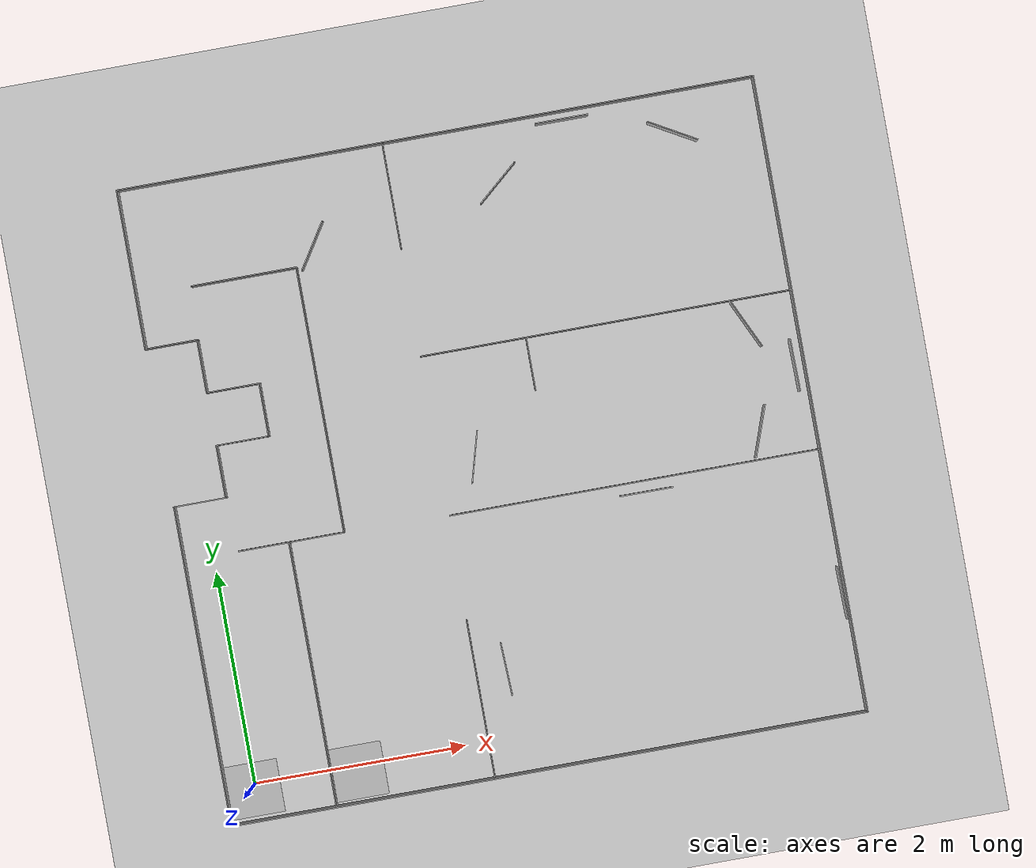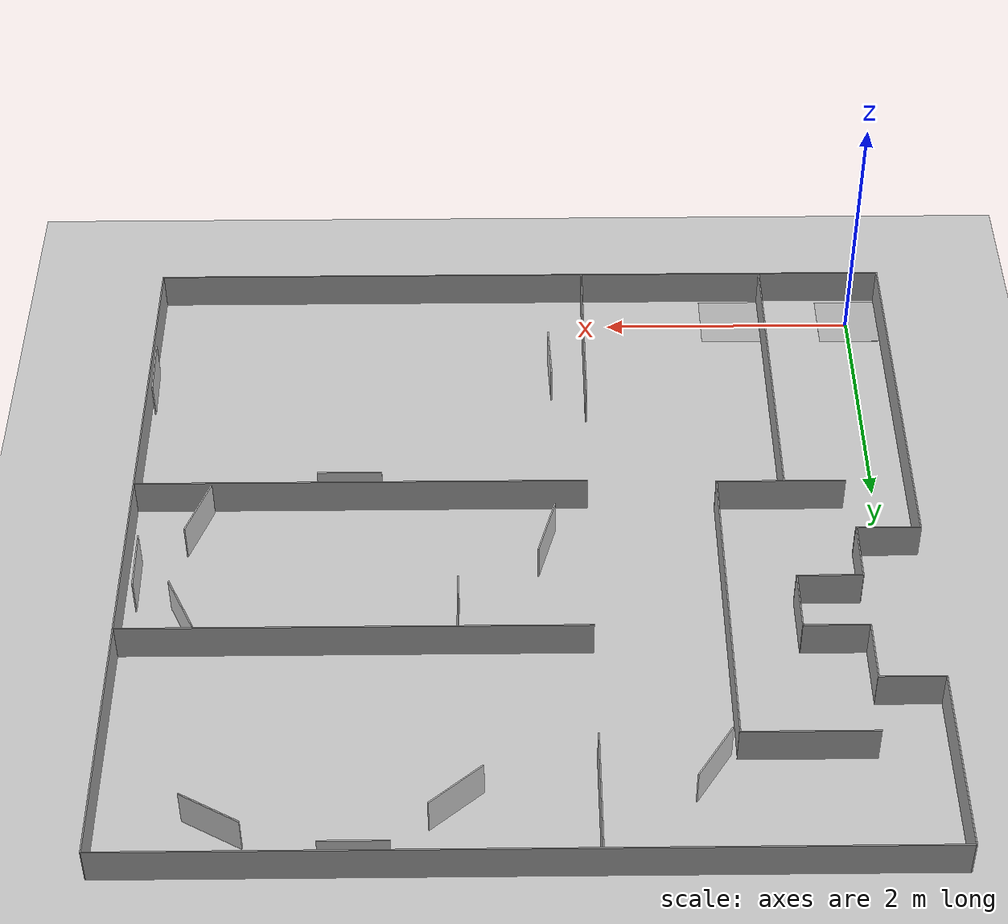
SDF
<sdf version="1.6">
 <world name="default">
  <light name="sun" type="directional">
   <pose>0 0 10 0 -0 0</pose>
   <diffuse>0.8 0.8 0.8 1</diffuse>
   <specular>0.2 0.2 0.2 1</specular>
   <attenuation>
    <range>1000</range>
    <constant>0.9</constant>
    <linear>0.01</linear>
    <quadratic>0.001</quadratic>
   </attenuation>
   <direction>-0.5 0.1 -0.9</direction>
  </light>
  <model name="ground_plane">
   <static>1</static>
   <link name="link">
    <collision name="collision">
     <geometry><plane><normal>0 0 1</normal><size>100 100</size></plane></geometry>
     <surface>
      <contact><collide_bitmask>65535</collide_bitmask></contact>
      <friction><ode><mu>100</mu><mu2>50</mu2></ode></friction>
     </surface>
    </collision>
    <visual name="visual">
     <cast_shadows>0</cast_shadows>
     <geometry><plane><normal>0 0 1</normal><size>100 100</size></plane></geometry>
     <material>
      <script><uri>file://media/materials/scripts/gazebo.material</uri><name>Gazebo/Grey</name></script>
     </material>
    </visual>
   </link>
  </model>
  <gravity>0 0 -9.8</gravity>
  <magnetic_field>6e-06 2.3e-05 -4.2e-05</magnetic_field>
  <atmosphere type="adiabatic"/>
  <physics name="default_physics" default="0" type="ode">
   <max_step_size>0.001</max_step_size>
   <real_time_factor>1</real_time_factor>
   <real_time_update_rate>1000</real_time_update_rate>
  </physics>
  <scene><ambient>0.4 0.4 0.4 1</ambient><background>0.7 0.7 0.7 1</background><shadows>1</shadows></scene>
  <audio><device>default</device></audio>
  <spherical_coordinates>
   <surface_model>EARTH_WGS84</surface_model>
   <latitude_deg>0</latitude_deg>
   <longitude_deg>0</longitude_deg>
   <elevation>0</elevation>
   <heading_deg>0</heading_deg>
  </spherical_coordinates>
  <model name="arena">
   <pose>2.72717 2.66142 0 0 -0 0</pose>
   <link name="Wall_1">
    <collision name="Wall_1_Collision">
     <geometry><box><size>6 0.01 0.3</size></box></geometry>
     <pose>0 0 0.15 0 -0 0</pose>
    </collision>
    <visual name="Wall_1_Visual">
     <pose>0 0 0.15 0 -0 0</pose>
     <geometry><box><size>6 0.01 0.3</size></box></geometry>
     <material>
      <script><uri>file://media/materials/scripts/gazebo.material</uri><name>Gazebo/Grey</name></script>
      <ambient>1 1 1 1</ambient>
     </material>
     <meta><layer>0</layer></meta>
    </visual>
    <pose>0.001988 -2.99751 0 0 -0 0</pose>
   </link>
   <link name="Wall_11">
    <collision name="Wall_11_Collision">
     <geometry><box><size>1.5 0.01 0.3</size></box></geometry>
     <pose>0 0 0.15 0 -0 0</pose>
    </collision>
    <visual name="Wall_11_Visual">
     <pose>0 0 0.15 0 -0 0</pose>
     <geometry><box><size>1.5 0.01 0.3</size></box></geometry>
     <material>
      <script><uri>file://media/materials/scripts/gazebo.material</uri><name>Gazebo/Grey</name></script>
      <ambient>1 1 1 1</ambient>
     </material>
     <meta><layer>0</layer></meta>
    </visual>
    <pose>-2.99841 2.25251 0 0 -0 1.5708</pose>
   </link>
   <link name="Wall_20">
    <collision name="Wall_20_Collision">
     <geometry><box><size>0.5 0.01 0.3</size></box></geometry>
     <pose>0 0 0.15 0 -0 0</pose>
    </collision>
    <visual name="Wall_20_Visual">
     <pose>0 0 0.15 0 -0 0</pose>
     <geometry><box><size>0.5 0.01 0.3</size></box></geometry>
     <material>
      <script><uri>file://media/materials/scripts/gazebo.material</uri><name>Gazebo/Grey</name></script>
      <ambient>1 1 1 1</ambient>
     </material>
     <meta><layer>0</layer></meta>
    </visual>
    <pose>-2.75425 1.50057 0 0 -0 0</pose>
   </link>
   <link name="Wall_22">
    <collision name="Wall_22_Collision">
     <geometry><box><size>0.5 0.01 0.3</size></box></geometry>
     <pose>0 0 0.15 0 -0 0</pose>
    </collision>
    <visual name="Wall_22_Visual">
     <pose>0 0 0.15 0 -0 0</pose>
     <geometry><box><size>0.5 0.01 0.3</size></box></geometry>
     <material>
      <script><uri>file://media/materials/scripts/gazebo.material</uri><name>Gazebo/Grey</name></script>
      <ambient>1 1 1 1</ambient>
     </material>
     <meta><layer>0</layer></meta>
    </visual>
    <pose>-2.50969 1.25495 0 0 -0 1.5708</pose>
   </link>
   <link name="Wall_24">
    <collision name="Wall_24_Collision">
     <geometry><box><size>0.5 0.01 0.3</size></box></geometry>
     <pose>0 0 0.15 0 -0 0</pose>
    </collision>
    <visual name="Wall_24_Visual">
     <pose>0 0 0.15 0 -0 0</pose>
     <geometry><box><size>0.5 0.01 0.3</size></box></geometry>
     <material>
      <script><uri>file://media/materials/scripts/gazebo.material</uri><name>Gazebo/Grey</name></script>
      <ambient>1 1 1 1</ambient>
     </material>
     <meta><layer>0</layer></meta>
    </visual>
    <pose>-2.26459 1.00122 0 0 -0 0</pose>
   </link>
   <link name="Wall_28">
    <collision name="Wall_28_Collision">
     <geometry><box><size>0.5 0.01 0.3</size></box></geometry>
     <pose>0 0 0.15 0 -0 0</pose>
    </collision>
    <visual name="Wall_28_Visual">
     <pose>0 0 0.15 0 -0 0</pose>
     <geometry><box><size>0.5 0.01 0.3</size></box></geometry>
     <material>
      <script><uri>file://media/materials/scripts/gazebo.material</uri><name>Gazebo/Grey</name></script>
      <ambient>1 1 1 1</ambient>
     </material>
     <meta><layer>0</layer></meta>
    </visual>
    <pose>-2.01503 0.755808 0 0 -0 -1.5708</pose>
   </link>
   <link name="Wall_30">
    <collision name="Wall_30_Collision">
     <geometry><box><size>0.5 0.01 0.3</size></box></geometry>
     <pose>0 0 0.15 0 -0 0</pose>
    </collision>
    <visual name="Wall_30_Visual">
     <pose>0 0 0.15 0 -0 0</pose>
     <geometry><box><size>0.5 0.01 0.3</size></box></geometry>
     <material>
      <script><uri>file://media/materials/scripts/gazebo.material</uri><name>Gazebo/Grey</name></script>
      <ambient>1 1 1 1</ambient>
     </material>
     <meta><layer>0</layer></meta>
    </visual>
    <pose>-2.25991 0.503524 0 0 -0 0</pose>
   </link>
   <link name="Wall_34">
    <collision name="Wall_34_Collision">
     <geometry><box><size>0.5 0.01 0.3</size></box></geometry>
     <pose>0 0 0.15 0 -0 0</pose>
    </collision>
    <visual name="Wall_34_Visual">
     <pose>0 0 0.15 0 -0 0</pose>
     <geometry><box><size>0.5 0.01 0.3</size></box></geometry>
     <material>
      <script><uri>file://media/materials/scripts/gazebo.material</uri><name>Gazebo/Grey</name></script>
      <ambient>1 1 1 1</ambient>
     </material>
     <meta><layer>0</layer></meta>
    </visual>
    <pose>-2.50907 0.257403 0 0 -0 -1.5708</pose>
   </link>
   <link name="Wall_36">
    <collision name="Wall_36_Collision">
     <geometry><box><size>0.5 0.01 0.3</size></box></geometry>
     <pose>0 0 0.15 0 -0 0</pose>
    </collision>
    <visual name="Wall_36_Visual">
     <pose>0 0 0.15 0 -0 0</pose>
     <geometry><box><size>0.5 0.01 0.3</size></box></geometry>
     <material>
      <script><uri>file://media/materials/scripts/gazebo.material</uri><name>Gazebo/Grey</name></script>
      <ambient>1 1 1 1</ambient>
     </material>
     <meta><layer>0</layer></meta>
    </visual>
    <pose>-2.75227 0.011599 0 0 -0 0</pose>
   </link>
   <link name="Wall_38">
    <collision name="Wall_38_Collision">
     <geometry><box><size>3.012 0.01 0.3</size></box></geometry>
     <pose>0 0 0.15 0 -0 0</pose>
    </collision>
    <visual name="Wall_38_Visual">
     <pose>0 0 0.15 0 -0 0</pose>
     <geometry><box><size>3.012 0.01 0.3</size></box></geometry>
     <material>
      <script><uri>file://media/materials/scripts/gazebo.material</uri><name>Gazebo/Grey</name></script>
      <ambient>1 1 1 1</ambient>
     </material>
     <meta><layer>0</layer></meta>
    </visual>
    <pose>-2.99601 -1.49551 0 0 -0 -1.5708</pose>
   </link>
   <link name="Wall_41">
    <collision name="Wall_41_Collision">
     <geometry><box><size>1 0.01 0.3</size></box></geometry>
     <pose>0 0 0.15 0 -0 0</pose>
    </collision>
    <visual name="Wall_41_Visual">
     <pose>0 0 0.15 0 -0 0</pose>
     <geometry><box><size>1 0.01 0.3</size></box></geometry>
     <material>
      <script><uri>file://media/materials/scripts/gazebo.material</uri><name>Gazebo/Grey</name></script>
      <ambient>1 1 1 1</ambient>
     </material>
     <meta><layer>0</layer></meta>
    </visual>
    <pose>-0.498279 2.49812 0 0 -0 1.5708</pose>
   </link>
   <link name="Wall_44">
    <collision name="Wall_44_Collision">
     <geometry><box><size>3.5 0.01 0.3</size></box></geometry>
     <pose>0 0 0.15 0 -0 0</pose>
    </collision>
    <visual name="Wall_44_Visual">
     <pose>0 0 0.15 0 -0 0</pose>
     <geometry><box><size>3.5 0.01 0.3</size></box></geometry>
     <material>
      <script><uri>file://media/materials/scripts/gazebo.material</uri><name>Gazebo/Grey</name></script>
      <ambient>1 1 1 1</ambient>
     </material>
     <meta><layer>0</layer></meta>
    </visual>
    <pose>1.25071 0.982331 0 0 -0 0</pose>
   </link>
   <link name="Wall_46">
    <collision name="Wall_46_Collision">
     <geometry><box><size>0.5 0.01 0.3</size></box></geometry>
     <pose>0 0 0.15 0 -0 0</pose>
    </collision>
    <visual name="Wall_46_Visual">
     <pose>0 0 0.15 0 -0 0</pose>
     <geometry><box><size>0.5 0.01 0.3</size></box></geometry>
     <material>
      <script><uri>file://media/materials/scripts/gazebo.material</uri><name>Gazebo/Grey</name></script>
      <ambient>1 1 1 1</ambient>
     </material>
     <meta><layer>0</layer></meta>
    </visual>
    <pose>0.496275 0.729352 0 0 -0 1.5708</pose>
   </link>
   <link name="Wall_48">
    <collision name="Wall_48_Collision">
     <geometry><box><size>3.5 0.01 0.3</size></box></geometry>
     <pose>0 0 0.15 0 -0 0</pose>
    </collision>
    <visual name="Wall_48_Visual">
     <pose>0 0 0.15 0 -0 0</pose>
     <geometry><box><size>3.5 0.01 0.3</size></box></geometry>
     <material>
      <script><uri>file://media/materials/scripts/gazebo.material</uri><name>Gazebo/Grey</name></script>
      <ambient>1 1 1 1</ambient>
     </material>
     <meta><layer>0</layer></meta>
    </visual>
    <pose>1.25425 -0.520404 0 0 -0 0</pose>
   </link>
   <link name="Wall_50">
    <collision name="Wall_50_Collision">
     <geometry><box><size>1.5 0.01 0.3</size></box></geometry>
     <pose>0 0 0.15 0 -0 0</pose>
    </collision>
    <visual name="Wall_50_Visual">
     <pose>0 0 0.15 0 -0 0</pose>
     <geometry><box><size>1.5 0.01 0.3</size></box></geometry>
     <material>
      <script><uri>file://media/materials/scripts/gazebo.material</uri><name>Gazebo/Grey</name></script>
      <ambient>1 1 1 1</ambient>
     </material>
     <meta><layer>0</layer></meta>
    </visual>
    <pose>-0.512233 -2.25115 0 0 -0 -1.5708</pose>
   </link>
   <link name="Wall_52">
    <collision name="Wall_52_Collision">
     <geometry><box><size>2.5 0.01 0.3</size></box></geometry>
     <pose>0 0 0.15 0 -0 0</pose>
    </collision>
    <visual name="Wall_52_Visual">
     <pose>0 0 0.15 0 -0 0</pose>
     <geometry><box><size>2.5 0.01 0.3</size></box></geometry>
     <material>
      <script><uri>file://media/materials/scripts/gazebo.material</uri><name>Gazebo/Grey</name></script>
      <ambient>1 1 1 1</ambient>
     </material>
     <meta><layer>0</layer></meta>
    </visual>
    <pose>-2.00505 -1.74423 0 0 -0 -1.5708</pose>
   </link>
   <link name="Wall_54">
    <collision name="Wall_54_Collision">
     <geometry><box><size>1 0.01 0.3</size></box></geometry>
     <pose>0 0 0.15 0 -0 0</pose>
    </collision>
    <visual name="Wall_54_Visual">
     <pose>0 0 0.15 0 -0 0</pose>
     <geometry><box><size>1 0.01 0.3</size></box></geometry>
     <material>
      <script><uri>file://media/materials/scripts/gazebo.material</uri><name>Gazebo/Grey</name></script>
      <ambient>1 1 1 1</ambient>
     </material>
     <meta><layer>0</layer></meta>
    </visual>
    <pose>-1.98078 -0.499121 0 0 -0 0</pose>
   </link>
   <link name="Wall_56">
    <collision name="Wall_56_Collision">
     <geometry><box><size>2.5 0.01 0.3</size></box></geometry>
     <pose>0 0 0.15 0 -0 0</pose>
    </collision>
    <visual name="Wall_56_Visual">
     <pose>0 0 0.15 0 -0 0</pose>
     <geometry><box><size>2.5 0.01 0.3</size></box></geometry>
     <material>
      <script><uri>file://media/materials/scripts/gazebo.material</uri><name>Gazebo/Grey</name></script>
      <ambient>1 1 1 1</ambient>
     </material>
     <meta><layer>0</layer></meta>
    </visual>
    <pose>-1.48616 0.751059 0 0 -0 -1.5708</pose>
   </link>
   <link name="Wall_58">
    <collision name="Wall_58_Collision">
     <geometry><box><size>1 0.01 0.3</size></box></geometry>
     <pose>0 0 0.15 0 -0 0</pose>
    </collision>
    <visual name="Wall_58_Visual">
     <pose>0 0 0.15 0 -0 0</pose>
     <geometry><box><size>1 0.01 0.3</size></box></geometry>
     <material>
      <script><uri>file://media/materials/scripts/gazebo.material</uri><name>Gazebo/Grey</name></script>
      <ambient>1 1 1 1</ambient>
     </material>
     <meta><layer>0</layer></meta>
    </visual>
    <pose>-1.9786 2.00012 0 0 -0 0</pose>
   </link>
   <link name="Wall_6">
    <collision name="Wall_6_Collision">
     <geometry><box><size>6 0.01 0.3</size></box></geometry>
     <pose>0 0 0.15 0 -0 0</pose>
    </collision>
    <visual name="Wall_6_Visual">
     <pose>0 0 0.15 0 -0 0</pose>
     <geometry><box><size>6 0.01 0.3</size></box></geometry>
     <material>
      <script><uri>file://media/materials/scripts/gazebo.material</uri><name>Gazebo/Grey</name></script>
      <ambient>1 1 1 1</ambient>
     </material>
     <meta><layer>0</layer></meta>
    </visual>
    <pose>2.99837 -0.000334 0 0 -0 -1.5708</pose>
   </link>
   <link name="Wall_8">
    <collision name="Wall_8_Collision">
     <geometry><box><size>6 0.01 0.3</size></box></geometry>
     <pose>0 0 0.15 0 -0 0</pose>
    </collision>
    <visual name="Wall_8_Visual">
     <pose>0 0 0.15 0 -0 0</pose>
     <geometry><box><size>6 0.01 0.3</size></box></geometry>
     <material>
      <script><uri>file://media/materials/scripts/gazebo.material</uri><name>Gazebo/Grey</name></script>
      <ambient>1 1 1 1</ambient>
     </material>
     <meta><layer>0</layer></meta>
    </visual>
    <pose>-0.003034 2.99691 0 0 -0 0</pose>
   </link>
   <static>1</static>
  </model>
  <model name="start_plane">
   <static>1</static>
   <link name="link">
    <collision name="collision">
     <geometry><plane><normal>0 0 1</normal><size>0.5 0.5</size></plane></geometry>
     <surface><friction><ode><mu>100</mu><mu2>50</mu2></ode></friction></surface>
    </collision>
    <visual name="visual">
     <cast_shadows>0</cast_shadows>
     <geometry><plane><normal>0 0 1</normal><size>0.5 0.5</size></plane></geometry>
     <material>
      <script>
       <uri>model://start_plane/materials/scripts</uri>
       <uri>model://start_plane/materials/textures/</uri>
       <name>StartPlane/Image</name>
      </script>
     </material>
    </visual>
   </link>
   <pose>-0.014663 -0.051968 0 0 -0 0</pose>
  </model>
  <model name="end_plane">
   <static>1</static>
   <link name="link">
    <collision name="collision">
     <geometry><plane><normal>0 0 1</normal><size>0.5 0.5</size></plane></geometry>
     <surface><friction><ode><mu>100</mu><mu2>50</mu2></ode></friction></surface>
    </collision>
    <visual name="visual">
     <cast_shadows>0</cast_shadows>
     <geometry><plane><normal>0 0 1</normal><size>0.5 0.5</size></plane></geometry>
     <material>
      <script>
       <uri>model://end_plane/materials/scripts</uri>
       <uri>model://end_plane/materials/textures/</uri>
       <name>EndPlane/Image</name>
      </script>
     </material>
    </visual>
   </link>
   <pose>0.968541 -0.061057 0 0 -0 0</pose>
  </model>
  <model name="panel_bed">
   <link name="link_0">
    <inertial>
     <mass>1</mass>
     <inertia>
      <ixx>0.166667</ixx>
      <ixy>0</ixy>
      <ixz>0</ixz>
      <iyy>0.166667</iyy>
      <iyz>0</iyz>
      <izz>0.166667</izz>
     </inertia>
    </inertial>
    <visual name="visual">
     <geometry><box><size>0.5 0.01 0.3</size></box></geometry>
     <material>
      <script>
       <uri>model://panel_bed/materials/scripts</uri>
       <uri>model://panel_bed/materials/textures/</uri>
       <name>Targets/bed</name>
      </script>
     </material>
    </visual>
    <collision name="collision">
     <geometry><box><size>0.5 0.01 0.3</size></box></geometry>
     <surface>
      <friction>
       <ode><mu>1</mu><mu2>1</mu2><fdir1>0 0 0</fdir1><slip1>0</slip1><slip2>0</slip2></ode>
       <torsional>
        <coefficient>1</coefficient>
        <patch_radius>0</patch_radius>
        <surface_radius>0</surface_radius>
        <use_patch_radius>1</use_patch_radius>
        <ode><slip>0</slip></ode>
       </torsional>
      </friction>
      <bounce><restitution_coefficient>0</restitution_coefficient><threshold>1e+06</threshold></bounce>
      <contact>
       <collide_without_contact>0</collide_without_contact>
       <collide_without_contact_bitmask>1</collide_without_contact_bitmask>
       <collide_bitmask>1</collide_bitmask>
       <ode>
        <soft_cfm>0</soft_cfm>
        <soft_erp>0.2</soft_erp>
        <kp>1e+13</kp>
        <kd>1</kd>
        <max_vel>0.01</max_vel>
        <min_depth>0</min_depth>
       </ode>
       <bullet>
        <split_impulse>1</split_impulse>
        <split_impulse_penetration_threshold>-0.01</split_impulse_penetration_threshold>
        <soft_cfm>0</soft_cfm>
        <soft_erp>0.2</soft_erp>
        <kp>1e+13</kp>
        <kd>1</kd>
       </bullet>
      </contact>
     </surface>
    </collision>
   </link>
   <static>0</static>
   <pose>3.90719 5.57957 0.149994 -2e-06 -0 -1e-06</pose>
  </model>
  <model name="panel_person">
   <link name="link_0">
    <inertial>
     <mass>1</mass>
     <inertia>
      <ixx>0.166667</ixx>
      <ixy>0</ixy>
      <ixz>0</ixz>
      <iyy>0.166667</iyy>
      <iyz>0</iyz>
      <izz>0.166667</izz>
     </inertia>
    </inertial>
    <visual name="visual">
     <geometry><box><size>0.5 0.01 0.3</size></box></geometry>
     <material>
      <script>
       <uri>model://panel_person/materials/scripts</uri>
       <uri>model://panel_person/materials/textures/</uri>
       <name>Targets/person</name>
      </script>
     </material>
    </visual>
    <collision name="collision">
     <geometry><box><size>0.5 0.01 0.3</size></box></geometry>
     <surface>
      <friction>
       <ode><mu>1</mu><mu2>1</mu2><fdir1>0 0 0</fdir1><slip1>0</slip1><slip2>0</slip2></ode>
       <torsional>
        <coefficient>1</coefficient>
        <patch_radius>0</patch_radius>
        <surface_radius>0</surface_radius>
        <use_patch_radius>1</use_patch_radius>
        <ode><slip>0</slip></ode>
       </torsional>
      </friction>
      <bounce><restitution_coefficient>0</restitution_coefficient><threshold>1e+06</threshold></bounce>
      <contact>
       <collide_without_contact>0</collide_without_contact>
       <collide_without_contact_bitmask>1</collide_without_contact_bitmask>
       <collide_bitmask>1</collide_bitmask>
       <ode>
        <soft_cfm>0</soft_cfm>
        <soft_erp>0.2</soft_erp>
        <kp>1e+13</kp>
        <kd>1</kd>
        <max_vel>0.01</max_vel>
        <min_depth>0</min_depth>
       </ode>
       <bullet>
        <split_impulse>1</split_impulse>
        <split_impulse_penetration_threshold>-0.01</split_impulse_penetration_threshold>
        <soft_cfm>0</soft_cfm>
        <soft_erp>0.2</soft_erp>
        <kp>1e+13</kp>
        <kd>1</kd>
       </bullet>
      </contact>
     </surface>
    </collision>
   </link>
   <static>0</static>
   <pose>4.90109 5.28985 0.149995 -1e-06 -0 -0.514792</pose>
  </model>
  <model name="panel_pet">
   <link name="link_0">
    <inertial>
     <mass>1</mass>
     <inertia>
      <ixx>0.166667</ixx>
      <ixy>0</ixy>
      <ixz>0</ixz>
      <iyy>0.166667</iyy>
      <iyz>0</iyz>
      <izz>0.166667</izz>
     </inertia>
    </inertial>
    <visual name="visual">
     <geometry><box><size>0.5 0.01 0.3</size></box></geometry>
     <material>
      <script>
       <uri>model://panel_pet/materials/scripts</uri>
       <uri>model://panel_pet/materials/textures/</uri>
       <name>Targets/pet</name>
      </script>
     </material>
    </visual>
    <collision name="collision">
     <geometry><box><size>0.5 0.01 0.3</size></box></geometry>
     <surface>
      <friction>
       <ode><mu>1</mu><mu2>1</mu2><fdir1>0 0 0</fdir1><slip1>0</slip1><slip2>0</slip2></ode>
       <torsional>
        <coefficient>1</coefficient>
        <patch_radius>0</patch_radius>
        <surface_radius>0</surface_radius>
        <use_patch_radius>1</use_patch_radius>
        <ode><slip>0</slip></ode>
       </torsional>
      </friction>
      <bounce><restitution_coefficient>0</restitution_coefficient><threshold>1e+06</threshold></bounce>
      <contact>
       <collide_without_contact>0</collide_without_contact>
       <collide_without_contact_bitmask>1</collide_without_contact_bitmask>
       <collide_bitmask>1</collide_bitmask>
       <ode>
        <soft_cfm>0</soft_cfm>
        <soft_erp>0.2</soft_erp>
        <kp>1e+13</kp>
        <kd>1</kd>
        <max_vel>0.01</max_vel>
        <min_depth>0</min_depth>
       </ode>
       <bullet>
        <split_impulse>1</split_impulse>
        <split_impulse_penetration_threshold>-0.01</split_impulse_penetration_threshold>
        <soft_cfm>0</soft_cfm>
        <soft_erp>0.2</soft_erp>
        <kp>1e+13</kp>
        <kd>1</kd>
       </bullet>
      </contact>
     </surface>
    </collision>
   </link>
   <static>0</static>
   <pose>3.22182 5.10328 0.149997 0 -0 0.710722</pose>
  </model>
  <model name="panel_sofa">
   <link name="link_0">
    <inertial>
     <mass>1</mass>
     <inertia>
      <ixx>0.166667</ixx>
      <ixy>0</ixy>
      <ixz>0</ixz>
      <iyy>0.166667</iyy>
      <iyz>0</iyz>
      <izz>0.166667</izz>
     </inertia>
    </inertial>
    <visual name="visual">
     <geometry><box><size>0.5 0.01 0.3</size></box></geometry>
     <material>
      <script>
       <uri>model://panel_sofa/materials/scripts</uri>
       <uri>model://panel_sofa/materials/textures/</uri>
       <name>Targets/sofa</name>
      </script>
     </material>
    </visual>
    <collision name="collision">
     <geometry><box><size>0.5 0.01 0.3</size></box></geometry>
     <surface>
      <friction>
       <ode><mu>1</mu><mu2>1</mu2><fdir1>0 0 0</fdir1><slip1>0</slip1><slip2>0</slip2></ode>
       <torsional>
        <coefficient>1</coefficient>
        <patch_radius>0</patch_radius>
        <surface_radius>0</surface_radius>
        <use_patch_radius>1</use_patch_radius>
        <ode><slip>0</slip></ode>
       </torsional>
      </friction>
      <bounce><restitution_coefficient>0</restitution_coefficient><threshold>1e+06</threshold></bounce>
      <contact>
       <collide_without_contact>0</collide_without_contact>
       <collide_without_contact_bitmask>1</collide_without_contact_bitmask>
       <collide_bitmask>1</collide_bitmask>
       <ode>
        <soft_cfm>0</soft_cfm>
        <soft_erp>0.2</soft_erp>
        <kp>1e+13</kp>
        <kd>1</kd>
        <max_vel>0.01</max_vel>
        <min_depth>0</min_depth>
       </ode>
       <bullet>
        <split_impulse>1</split_impulse>
        <split_impulse_penetration_threshold>-0.01</split_impulse_penetration_threshold>
        <soft_cfm>0</soft_cfm>
        <soft_erp>0.2</soft_erp>
        <kp>1e+13</kp>
        <kd>1</kd>
       </bullet>
      </contact>
     </surface>
    </collision>
   </link>
   <static>0</static>
   <pose>5.6326 2.951 0.149993 2e-06 -0 -1.55619</pose>
  </model>
  <model name="panel_tv">
   <link name="link_0">
    <inertial>
     <mass>1</mass>
     <inertia>
      <ixx>0.166667</ixx>
      <ixy>0</ixy>
      <ixz>0</ixz>
      <iyy>0.166667</iyy>
      <iyz>0</iyz>
      <izz>0.166667</izz>
     </inertia>
    </inertial>
    <visual name="visual">
     <geometry><box><size>0.5 0.01 0.3</size></box></geometry>
     <material>
      <script>
       <uri>model://panel_tv/materials/scripts</uri>
       <uri>model://panel_tv/materials/textures/</uri>
       <name>Targets/tv</name>
      </script>
     </material>
    </visual>
    <collision name="collision">
     <geometry><box><size>0.5 0.01 0.3</size></box></geometry>
     <surface>
      <friction>
       <ode><mu>1</mu><mu2>1</mu2><fdir1>0 0 0</fdir1><slip1>0</slip1><slip2>0</slip2></ode>
       <torsional>
        <coefficient>1</coefficient>
        <patch_radius>0</patch_radius>
        <surface_radius>0</surface_radius>
        <use_patch_radius>1</use_patch_radius>
        <ode><slip>0</slip></ode>
       </torsional>
      </friction>
      <bounce><restitution_coefficient>0</restitution_coefficient><threshold>1e+06</threshold></bounce>
      <contact>
       <collide_without_contact>0</collide_without_contact>
       <collide_without_contact_bitmask>1</collide_without_contact_bitmask>
       <collide_bitmask>1</collide_bitmask>
       <ode>
        <soft_cfm>0</soft_cfm>
        <soft_erp>0.2</soft_erp>
        <kp>1e+13</kp>
        <kd>1</kd>
        <max_vel>0.01</max_vel>
        <min_depth>0</min_depth>
       </ode>
       <bullet>
        <split_impulse>1</split_impulse>
        <split_impulse_penetration_threshold>-0.01</split_impulse_penetration_threshold>
        <soft_cfm>0</soft_cfm>
        <soft_erp>0.2</soft_erp>
        <kp>1e+13</kp>
        <kd>1</kd>
       </bullet>
      </contact>
     </surface>
    </collision>
   </link>
   <static>0</static>
   <pose>5.20919 2.40166 0.149997 0 0 -1.91222</pose>
  </model>
  <model name="panel_pet_0">
   <link name="link_0">
    <inertial>
     <mass>1</mass>
     <inertia>
      <ixx>0.166667</ixx>
      <ixy>0</ixy>
      <ixz>0</ixz>
      <iyy>0.166667</iyy>
      <iyz>0</iyz>
      <izz>0.166667</izz>
     </inertia>
    </inertial>
    <visual name="visual">
     <geometry><box><size>0.5 0.01 0.3</size></box></geometry>
     <material>
      <script>
       <uri>model://panel_pet/materials/scripts</uri>
       <uri>model://panel_pet/materials/textures/</uri>
       <name>Targets/pet</name>
      </script>
     </material>
    </visual>
    <collision name="collision">
     <geometry><box><size>0.5 0.01 0.3</size></box></geometry>
     <surface>
      <friction>
       <ode><mu>1</mu><mu2>1</mu2><fdir1>0 0 0</fdir1><slip1>0</slip1><slip2>0</slip2></ode>
       <torsional>
        <coefficient>1</coefficient>
        <patch_radius>0</patch_radius>
        <surface_radius>0</surface_radius>
        <use_patch_radius>1</use_patch_radius>
        <ode><slip>0</slip></ode>
       </torsional>
      </friction>
      <bounce><restitution_coefficient>0</restitution_coefficient><threshold>1e+06</threshold></bounce>
      <contact>
       <collide_without_contact>0</collide_without_contact>
       <collide_without_contact_bitmask>1</collide_without_contact_bitmask>
       <collide_bitmask>1</collide_bitmask>
       <ode>
        <soft_cfm>0</soft_cfm>
        <soft_erp>0.2</soft_erp>
        <kp>1e+13</kp>
        <kd>1</kd>
        <max_vel>0.01</max_vel>
        <min_depth>0</min_depth>
       </ode>
       <bullet>
        <split_impulse>1</split_impulse>
        <split_impulse_penetration_threshold>-0.01</split_impulse_penetration_threshold>
        <soft_cfm>0</soft_cfm>
        <soft_erp>0.2</soft_erp>
        <kp>1e+13</kp>
        <kd>1</kd>
       </bullet>
      </contact>
     </surface>
    </collision>
   </link>
   <static>0</static>
   <pose>5.25777 3.40074 0.149993 -1e-06 -0 -1.13028</pose>
  </model>
  <model name="panel_food">
   <link name="link_0">
    <inertial>
     <mass>1</mass>
     <inertia>
      <ixx>0.166667</ixx>
      <ixy>0</ixy>
      <ixz>0</ixz>
      <iyy>0.166667</iyy>
      <iyz>0</iyz>
      <izz>0.166667</izz>
     </inertia>
    </inertial>
    <visual name="visual">
     <geometry><box><size>0.5 0.01 0.3</size></box></geometry>
     <material>
      <script>
       <uri>model://panel_food/materials/scripts</uri>
       <uri>model://panel_food/materials/textures/</uri>
       <name>Targets/food</name>
      </script>
     </material>
    </visual>
    <collision name="collision">
     <geometry><box><size>0.5 0.01 0.3</size></box></geometry>
     <surface>
      <friction>
       <ode><mu>1</mu><mu2>1</mu2><fdir1>0 0 0</fdir1><slip1>0</slip1><slip2>0</slip2></ode>
       <torsional>
        <coefficient>1</coefficient>
        <patch_radius>0</patch_radius>
        <surface_radius>0</surface_radius>
        <use_patch_radius>1</use_patch_radius>
        <ode><slip>0</slip></ode>
       </torsional>
      </friction>
      <bounce><restitution_coefficient>0</restitution_coefficient><threshold>1e+06</threshold></bounce>
      <contact>
       <collide_without_contact>0</collide_without_contact>
       <collide_without_contact_bitmask>1</collide_without_contact_bitmask>
       <collide_bitmask>1</collide_bitmask>
       <ode>
        <soft_cfm>0</soft_cfm>
        <soft_erp>0.2</soft_erp>
        <kp>1e+13</kp>
        <kd>1</kd>
        <max_vel>0.01</max_vel>
        <min_depth>0</min_depth>
       </ode>
       <bullet>
        <split_impulse>1</split_impulse>
        <split_impulse_penetration_threshold>-0.01</split_impulse_penetration_threshold>
        <soft_cfm>0</soft_cfm>
        <soft_erp>0.2</soft_erp>
        <kp>1e+13</kp>
        <kd>1</kd>
       </bullet>
      </contact>
     </surface>
    </collision>
   </link>
   <static>0</static>
   <pose>5.69523 0.788964 0.149993 -1e-06 -0 -1.54692</pose>
  </model>
  <model name="panel_tableware">
   <link name="link_0">
    <inertial>
     <mass>1</mass>
     <inertia>
      <ixx>0.166667</ixx>
      <ixy>0</ixy>
      <ixz>0</ixz>
      <iyy>0.166667</iyy>
      <iyz>0</iyz>
      <izz>0.166667</izz>
     </inertia>
    </inertial>
    <visual name="visual">
     <geometry><box><size>0.5 0.01 0.3</size></box></geometry>
     <material>
      <script>
       <uri>model://panel_tableware/materials/scripts</uri>
       <uri>model://panel_tableware/materials/textures/</uri>
       <name>Targets/tableware</name>
      </script>
     </material>
    </visual>
    <collision name="collision">
     <geometry><box><size>0.5 0.01 0.3</size></box></geometry>
     <surface>
      <friction>
       <ode><mu>1</mu><mu2>1</mu2><fdir1>0 0 0</fdir1><slip1>0</slip1><slip2>0</slip2></ode>
       <torsional>
        <coefficient>1</coefficient>
        <patch_radius>0</patch_radius>
        <surface_radius>0</surface_radius>
        <use_patch_radius>1</use_patch_radius>
        <ode><slip>0</slip></ode>
       </torsional>
      </friction>
      <bounce><restitution_coefficient>0</restitution_coefficient><threshold>1e+06</threshold></bounce>
      <contact>
       <collide_without_contact>0</collide_without_contact>
       <collide_without_contact_bitmask>1</collide_without_contact_bitmask>
       <collide_bitmask>1</collide_bitmask>
       <ode>
        <soft_cfm>0</soft_cfm>
        <soft_erp>0.2</soft_erp>
        <kp>1e+13</kp>
        <kd>1</kd>
        <max_vel>0.01</max_vel>
        <min_depth>0</min_depth>
       </ode>
       <bullet>
        <split_impulse>1</split_impulse>
        <split_impulse_penetration_threshold>-0.01</split_impulse_penetration_threshold>
        <soft_cfm>0</soft_cfm>
        <soft_erp>0.2</soft_erp>
        <kp>1e+13</kp>
        <kd>1</kd>
       </bullet>
      </contact>
     </surface>
    </collision>
   </link>
   <static>0</static>
   <pose>4.0702 2.03627 0.149994 -1e-06 -0 -0.003567</pose>
  </model>
  <model name="panel_person_0">
   <link name="link_0">
    <inertial>
     <mass>1</mass>
     <inertia>
      <ixx>0.166667</ixx>
      <ixy>0</ixy>
      <ixz>0</ixz>
      <iyy>0.166667</iyy>
      <iyz>0</iyz>
      <izz>0.166667</izz>
     </inertia>
    </inertial>
    <visual name="visual">
     <geometry><box><size>0.5 0.01 0.3</size></box></geometry>
     <material>
      <script>
       <uri>model://panel_person/materials/scripts</uri>
       <uri>model://panel_person/materials/textures/</uri>
       <name>Targets/person</name>
      </script>
     </material>
    </visual>
    <collision name="collision">
     <geometry><box><size>0.5 0.01 0.3</size></box></geometry>
     <surface>
      <friction>
       <ode><mu>1</mu><mu2>1</mu2><fdir1>0 0 0</fdir1><slip1>0</slip1><slip2>0</slip2></ode>
       <torsional>
        <coefficient>1</coefficient>
        <patch_radius>0</patch_radius>
        <surface_radius>0</surface_radius>
        <use_patch_radius>1</use_patch_radius>
        <ode><slip>0</slip></ode>
       </torsional>
      </friction>
      <bounce><restitution_coefficient>0</restitution_coefficient><threshold>1e+06</threshold></bounce>
      <contact>
       <collide_without_contact>0</collide_without_contact>
       <collide_without_contact_bitmask>1</collide_without_contact_bitmask>
       <collide_bitmask>1</collide_bitmask>
       <ode>
        <soft_cfm>0</soft_cfm>
        <soft_erp>0.2</soft_erp>
        <kp>1e+13</kp>
        <kd>1</kd>
        <max_vel>0.01</max_vel>
        <min_depth>0</min_depth>
       </ode>
       <bullet>
        <split_impulse>1</split_impulse>
        <split_impulse_penetration_threshold>-0.01</split_impulse_penetration_threshold>
        <soft_cfm>0</soft_cfm>
        <soft_erp>0.2</soft_erp>
        <kp>1e+13</kp>
        <kd>1</kd>
       </bullet>
      </contact>
     </surface>
    </collision>
   </link>
   <static>0</static>
   <pose>2.49824 0.645483 0.149994 1e-06 -0 -1.53107</pose>
  </model>
  <model name="panel_blank">
   <link name="link_0">
    <inertial>
     <mass>1</mass>
     <inertia>
      <ixx>0.166667</ixx>
      <ixy>0</ixy>
      <ixz>0</ixz>
      <iyy>0.166667</iyy>
      <iyz>0</iyz>
      <izz>0.166667</izz>
     </inertia>
    </inertial>
    <visual name="visual">
     <geometry><box><size>0.5 0.01 0.3</size></box></geometry>
     <material>
      <script>
       <uri>model://panel_blank/materials/scripts</uri>
       <uri>model://panel_blank/materials/textures/</uri>
       <name>Targets/blank</name>
      </script>
     </material>
    </visual>
    <collision name="collision">
     <geometry><box><size>0.5 0.01 0.3</size></box></geometry>
     <surface>
      <friction>
       <ode><mu>1</mu><mu2>1</mu2><fdir1>0 0 0</fdir1><slip1>0</slip1><slip2>0</slip2></ode>
       <torsional>
        <coefficient>1</coefficient>
        <patch_radius>0</patch_radius>
        <surface_radius>0</surface_radius>
        <use_patch_radius>1</use_patch_radius>
        <ode><slip>0</slip></ode>
       </torsional>
      </friction>
      <bounce><restitution_coefficient>0</restitution_coefficient><threshold>1e+06</threshold></bounce>
      <contact>
       <collide_without_contact>0</collide_without_contact>
       <collide_without_contact_bitmask>1</collide_without_contact_bitmask>
       <collide_bitmask>1</collide_bitmask>
       <ode>
        <soft_cfm>0</soft_cfm>
        <soft_erp>0.2</soft_erp>
        <kp>1e+13</kp>
        <kd>1</kd>
        <max_vel>0.01</max_vel>
        <min_depth>0</min_depth>
       </ode>
       <bullet>
        <split_impulse>1</split_impulse>
        <split_impulse_penetration_threshold>-0.01</split_impulse_penetration_threshold>
        <soft_cfm>0</soft_cfm>
        <soft_erp>0.2</soft_erp>
        <kp>1e+13</kp>
        <kd>1</kd>
       </bullet>
      </contact>
     </surface>
    </collision>
   </link>
   <static>0</static>
   <pose>1.42162 4.83181 0.149992 -1e-06 -0 1.00389</pose>
  </model>
  <model name="panel_blank_0">
   <link name="link_0">
    <inertial>
     <mass>1</mass>
     <inertia>
      <ixx>0.166667</ixx>
      <ixy>0</ixy>
      <ixz>0</ixz>
      <iyy>0.166667</iyy>
      <iyz>0</iyz>
      <izz>0.166667</izz>
     </inertia>
    </inertial>
    <visual name="visual">
     <geometry><box><size>0.5 0.01 0.3</size></box></geometry>
     <material>
      <script>
       <uri>model://panel_blank/materials/scripts</uri>
       <uri>model://panel_blank/materials/textures/</uri>
       <name>Targets/blank</name>
      </script>
     </material>
    </visual>
    <collision name="collision">
     <geometry><box><size>0.5 0.01 0.3</size></box></geometry>
     <surface>
      <friction>
       <ode><mu>1</mu><mu2>1</mu2><fdir1>0 0 0</fdir1><slip1>0</slip1><slip2>0</slip2></ode>
       <torsional>
        <coefficient>1</coefficient>
        <patch_radius>0</patch_radius>
        <surface_radius>0</surface_radius>
        <use_patch_radius>1</use_patch_radius>
        <ode><slip>0</slip></ode>
       </torsional>
      </friction>
      <bounce><restitution_coefficient>0</restitution_coefficient><threshold>1e+06</threshold></bounce>
      <contact>
       <collide_without_contact>0</collide_without_contact>
       <collide_without_contact_bitmask>1</collide_without_contact_bitmask>
       <collide_bitmask>1</collide_bitmask>
       <ode>
        <soft_cfm>0</soft_cfm>
        <soft_erp>0.2</soft_erp>
        <kp>1e+13</kp>
        <kd>1</kd>
        <max_vel>0.01</max_vel>
        <min_depth>0</min_depth>
       </ode>
       <bullet>
        <split_impulse>1</split_impulse>
        <split_impulse_penetration_threshold>-0.01</split_impulse_penetration_threshold>
        <soft_cfm>0</soft_cfm>
        <soft_erp>0.2</soft_erp>
        <kp>1e+13</kp>
        <kd>1</kd>
       </bullet>
      </contact>
     </surface>
    </collision>
   </link>
   <static>0</static>
   <pose>2.55674 2.63374 0.149995 -1e-06 2e-06 1.30051</pose>
  </model>
 </world>
</sdf>
